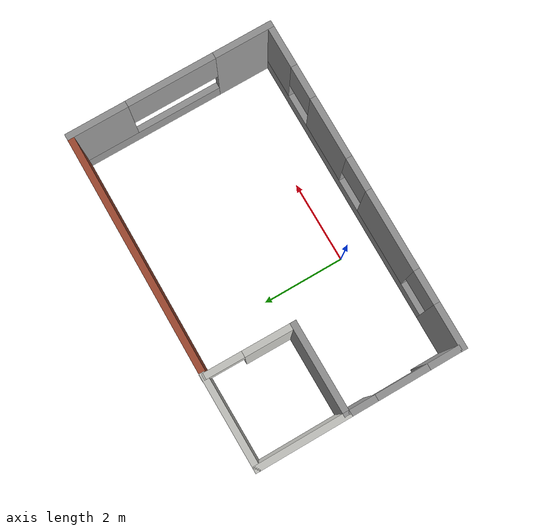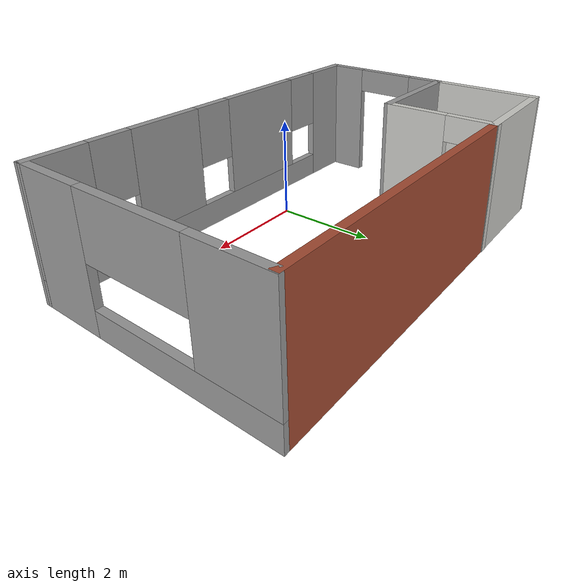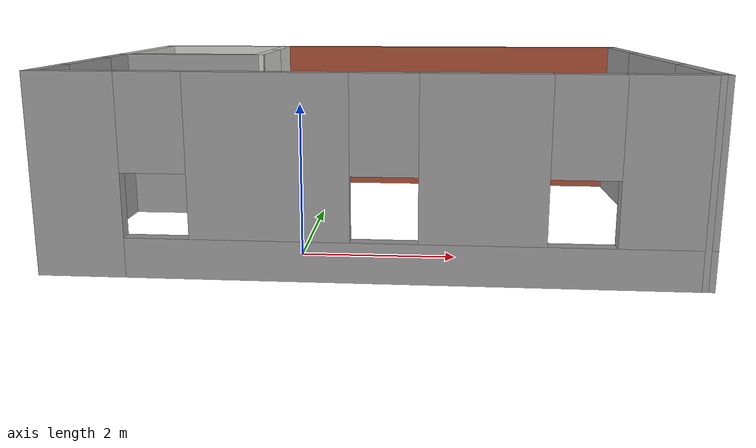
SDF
<?xml version='1.0'?>
<sdf version='1.6'>
  <model name='studio'>
    <pose frame=''>0.915139 1.5214 0 0 -0 0</pose>
    <link name='Wall_0'>
      <pose frame=''>-0 -2.41757 0 0 -0 -0.007301</pose>
      <visual name='Wall_0_Visual_0'>
        <pose frame=''>-3.47044 0 1.25 0 -0 0</pose>
        <geometry>
          <box>
            <size>1.09946 0.15 2.5</size>
          </box>
        </geometry>
        <material>
          <script>
            <uri>file://media/materials/scripts/gazebo.material</uri>
            <name>Gazebo/Grey</name>
          </script>
          <ambient>1 1 1 1</ambient>
        </material>
        <meta>
          <layer>0</layer>
        </meta>
      </visual>
      <collision name='Wall_0_Collision_0'>
        <geometry>
          <box>
            <size>1.09946 0.15 2.5</size>
          </box>
        </geometry>
        <pose frame=''>-3.47044 0 1.25 0 -0 0</pose>
      </collision>
      <visual name='Wall_0_Visual_1'>
        <pose frame=''>0.549728 0 0.25 0 -0 0</pose>
        <geometry>
          <box>
            <size>6.94087 0.15 0.5</size>
          </box>
        </geometry>
        <material>
          <script>
            <uri>file://media/materials/scripts/gazebo.material</uri>
            <name>Gazebo/Grey</name>
          </script>
          <ambient>1 1 1 1</ambient>
        </material>
        <meta>
          <layer>0</layer>
        </meta>
      </visual>
      <collision name='Wall_0_Collision_1'>
        <geometry>
          <box>
            <size>6.94087 0.15 0.5</size>
          </box>
        </geometry>
        <pose frame=''>0.549728 0 0.25 0 -0 0</pose>
      </collision>
      <visual name='Wall_0_Visual_2'>
        <pose frame=''>-1.15652 0 1.5 0 -0 0</pose>
        <geometry>
          <box>
            <size>1.92838 0.15 2</size>
          </box>
        </geometry>
        <material>
          <script>
            <uri>file://media/materials/scripts/gazebo.material</uri>
            <name>Gazebo/Grey</name>
          </script>
          <ambient>1 1 1 1</ambient>
        </material>
        <meta>
          <layer>0</layer>
        </meta>
      </visual>
      <collision name='Wall_0_Collision_2'>
        <geometry>
          <box>
            <size>1.92838 0.15 2</size>
          </box>
        </geometry>
        <pose frame=''>-1.15652 0 1.5 0 -0 0</pose>
      </collision>
      <visual name='Wall_0_Visual_3'>
        <pose frame=''>1.35343 0 1.5 0 -0 0</pose>
        <geometry>
          <box>
            <size>1.49152 0.15 2</size>
          </box>
        </geometry>
        <material>
          <script>
            <uri>file://media/materials/scripts/gazebo.material</uri>
            <name>Gazebo/Grey</name>
          </script>
          <ambient>1 1 1 1</ambient>
        </material>
        <meta>
          <layer>0</layer>
        </meta>
      </visual>
      <collision name='Wall_0_Collision_3'>
        <geometry>
          <box>
            <size>1.49152 0.15 2</size>
          </box>
        </geometry>
        <pose frame=''>1.35343 0 1.5 0 -0 0</pose>
      </collision>
      <visual name='Wall_0_Visual_4'>
        <pose frame=''>3.45968 0 1.5 0 -0 0</pose>
        <geometry>
          <box>
            <size>1.12098 0.15 2</size>
          </box>
        </geometry>
        <material>
          <script>
            <uri>file://media/materials/scripts/gazebo.material</uri>
            <name>Gazebo/Grey</name>
          </script>
          <ambient>1 1 1 1</ambient>
        </material>
        <meta>
          <layer>0</layer>
        </meta>
      </visual>
      <collision name='Wall_0_Collision_4'>
        <geometry>
          <box>
            <size>1.12098 0.15 2</size>
          </box>
        </geometry>
        <pose frame=''>3.45968 0 1.5 0 -0 0</pose>
      </collision>
      <visual name='Wall_0_Visual_5'>
        <pose frame=''>-2.52071 0 1.9 0 -0 0</pose>
        <geometry>
          <box>
            <size>0.8 0.15 1.2</size>
          </box>
        </geometry>
        <material>
          <script>
            <uri>file://media/materials/scripts/gazebo.material</uri>
            <name>Gazebo/Grey</name>
          </script>
          <ambient>1 1 1 1</ambient>
        </material>
        <meta>
          <layer>0</layer>
        </meta>
      </visual>
      <collision name='Wall_0_Collision_5'>
        <geometry>
          <box>
            <size>0.8 0.15 1.2</size>
          </box>
        </geometry>
        <pose frame=''>-2.52071 0 1.9 0 -0 0</pose>
      </collision>
      <visual name='Wall_0_Visual_6'>
        <pose frame=''>0.207668 0 1.9 0 -0 0</pose>
        <geometry>
          <box>
            <size>0.8 0.15 1.2</size>
          </box>
        </geometry>
        <material>
          <script>
            <uri>file://media/materials/scripts/gazebo.material</uri>
            <name>Gazebo/Grey</name>
          </script>
          <ambient>1 1 1 1</ambient>
        </material>
        <meta>
          <layer>0</layer>
        </meta>
      </visual>
      <collision name='Wall_0_Collision_6'>
        <geometry>
          <box>
            <size>0.8 0.15 1.2</size>
          </box>
        </geometry>
        <pose frame=''>0.207668 0 1.9 0 -0 0</pose>
      </collision>
      <visual name='Wall_0_Visual_7'>
        <pose frame=''>2.49919 0 1.9 0 -0 0</pose>
        <geometry>
          <box>
            <size>0.8 0.15 1.2</size>
          </box>
        </geometry>
        <material>
          <script>
            <uri>file://media/materials/scripts/gazebo.material</uri>
            <name>Gazebo/Grey</name>
          </script>
          <ambient>1 1 1 1</ambient>
        </material>
        <meta>
          <layer>0</layer>
        </meta>
      </visual>
      <collision name='Wall_0_Collision_7'>
        <geometry>
          <box>
            <size>0.8 0.15 1.2</size>
          </box>
        </geometry>
        <pose frame=''>2.49919 0 1.9 0 -0 0</pose>
      </collision>
    </link>
    <link name='Wall_1'>
      <pose frame=''>3.94506 -0.021379 0 0 -0 1.5708</pose>
      <visual name='Wall_1_Visual_0'>
        <pose frame=''>-1.78332 0 1.25 0 -0 0</pose>
        <geometry>
          <box>
            <size>1.43335 0.15 2.5</size>
          </box>
        </geometry>
        <material>
          <script>
            <uri>file://media/materials/scripts/gazebo.material</uri>
            <name>Gazebo/Grey</name>
          </script>
          <ambient>1 1 1 1</ambient>
        </material>
        <meta>
          <layer>0</layer>
        </meta>
      </visual>
      <collision name='Wall_1_Collision_0'>
        <geometry>
          <box>
            <size>1.43335 0.15 2.5</size>
          </box>
        </geometry>
        <pose frame=''>-1.78332 0 1.25 0 -0 0</pose>
      </collision>
      <visual name='Wall_1_Visual_1'>
        <pose frame=''>0.716677 0 0.25 0 -0 0</pose>
        <geometry>
          <box>
            <size>3.56665 0.15 0.5</size>
          </box>
        </geometry>
        <material>
          <script>
            <uri>file://media/materials/scripts/gazebo.material</uri>
            <name>Gazebo/Grey</name>
          </script>
          <ambient>1 1 1 1</ambient>
        </material>
        <meta>
          <layer>0</layer>
        </meta>
      </visual>
      <collision name='Wall_1_Collision_1'>
        <geometry>
          <box>
            <size>3.56665 0.15 0.5</size>
          </box>
        </geometry>
        <pose frame=''>0.716677 0 0.25 0 -0 0</pose>
      </collision>
      <visual name='Wall_1_Visual_2'>
        <pose frame=''>1.7759 0 1.5 0 -0 0</pose>
        <geometry>
          <box>
            <size>1.4482 0.15 2</size>
          </box>
        </geometry>
        <material>
          <script>
            <uri>file://media/materials/scripts/gazebo.material</uri>
            <name>Gazebo/Grey</name>
          </script>
          <ambient>1 1 1 1</ambient>
        </material>
        <meta>
          <layer>0</layer>
        </meta>
      </visual>
      <collision name='Wall_1_Collision_2'>
        <geometry>
          <box>
            <size>1.4482 0.15 2</size>
          </box>
        </geometry>
        <pose frame=''>1.7759 0 1.5 0 -0 0</pose>
      </collision>
      <visual name='Wall_1_Visual_3'>
        <pose frame=''>-0.007425 0 1.9 0 -0 0</pose>
        <geometry>
          <box>
            <size>2.11844 0.15 1.2</size>
          </box>
        </geometry>
        <material>
          <script>
            <uri>file://media/materials/scripts/gazebo.material</uri>
            <name>Gazebo/Grey</name>
          </script>
          <ambient>1 1 1 1</ambient>
        </material>
        <meta>
          <layer>0</layer>
        </meta>
      </visual>
      <collision name='Wall_1_Collision_3'>
        <geometry>
          <box>
            <size>2.11844 0.15 1.2</size>
          </box>
        </geometry>
        <pose frame=''>-0.007425 0 1.9 0 -0 0</pose>
      </collision>
    </link>
    <link name='Wall_10'>
      <collision name='Wall_10_Collision'>
        <geometry>
          <box>
            <size>2.25 0.15 2.5</size>
          </box>
        </geometry>
        <pose frame=''>0 0 1.25 0 -0 0</pose>
      </collision>
      <visual name='Wall_10_Visual'>
        <pose frame=''>0 0 1.25 0 -0 0</pose>
        <geometry>
          <box>
            <size>2.25 0.15 2.5</size>
          </box>
        </geometry>
        <material>
          <script>
            <uri>file://media/materials/scripts/gazebo.material</uri>
            <name>Gazebo/Grey</name>
          </script>
          <ambient>1 1 1 1</ambient>
        </material>
        <meta>
          <layer>0</layer>
        </meta>
      </visual>
      <pose frame=''>-2.89101 0.331178 0 0 -0 3.14159</pose>
    </link>
    <link name='Wall_11'>
      <pose frame=''>-3.94101 -0.968822 0 0 -0 -1.5708</pose>
      <visual name='Wall_11_Visual_0'>
        <pose frame=''>-0.995967 0 1.25 0 -0 0</pose>
        <geometry>
          <box>
            <size>0.758065 0.15 2.5</size>
          </box>
        </geometry>
        <material>
          <script>
            <uri>file://media/materials/scripts/gazebo.material</uri>
            <name>Gazebo/Grey</name>
          </script>
          <ambient>1 1 1 1</ambient>
        </material>
        <meta>
          <layer>0</layer>
        </meta>
      </visual>
      <collision name='Wall_11_Collision_0'>
        <geometry>
          <box>
            <size>0.758065 0.15 2.5</size>
          </box>
        </geometry>
        <pose frame=''>-0.995967 0 1.25 0 -0 0</pose>
      </collision>
      <visual name='Wall_11_Visual_1'>
        <pose frame=''>0.995188 0 1.25 0 -0 0</pose>
        <geometry>
          <box>
            <size>0.759623 0.15 2.5</size>
          </box>
        </geometry>
        <material>
          <script>
            <uri>file://media/materials/scripts/gazebo.material</uri>
            <name>Gazebo/Grey</name>
          </script>
          <ambient>1 1 1 1</ambient>
        </material>
        <meta>
          <layer>0</layer>
        </meta>
      </visual>
      <collision name='Wall_11_Collision_1'>
        <geometry>
          <box>
            <size>0.759623 0.15 2.5</size>
          </box>
        </geometry>
        <pose frame=''>0.995188 0 1.25 0 -0 0</pose>
      </collision>
      <visual name='Wall_11_Visual_2'>
        <pose frame=''>-0.000779 0 2.25 0 -0 0</pose>
        <geometry>
          <box>
            <size>1.23231 0.15 0.5</size>
          </box>
        </geometry>
        <material>
          <script>
            <uri>file://media/materials/scripts/gazebo.material</uri>
            <name>Gazebo/Grey</name>
          </script>
          <ambient>1 1 1 1</ambient>
        </material>
        <meta>
          <layer>0</layer>
        </meta>
      </visual>
      <collision name='Wall_11_Collision_2'>
        <geometry>
          <box>
            <size>1.23231 0.15 0.5</size>
          </box>
        </geometry>
        <pose frame=''>-0.000779 0 2.25 0 -0 0</pose>
      </collision>
    </link>
    <link name='Wall_13'>
      <collision name='Wall_13_Collision'>
        <geometry>
          <box>
            <size>2.25 0.15 2.5</size>
          </box>
        </geometry>
        <pose frame=''>0 0 1.25 0 -0 0</pose>
      </collision>
      <visual name='Wall_13_Visual'>
        <pose frame=''>0 0 1.25 0 -0 0</pose>
        <geometry>
          <box>
            <size>2.25 0.15 2.5</size>
          </box>
        </geometry>
        <material>
          <script>
            <uri>file://media/materials/scripts/gazebo.material</uri>
            <name>Gazebo/CeilingTiled</name>
          </script>
          <ambient>1 1 1 1</ambient>
        </material>
        <meta>
          <layer>0</layer>
        </meta>
      </visual>
      <pose frame=''>-3.94101 1.38118 0 0 -0 1.5708</pose>
    </link>
    <link name='Wall_14'>
      <collision name='Wall_14_Collision'>
        <geometry>
          <box>
            <size>2.28588 0.15 2.5</size>
          </box>
        </geometry>
        <pose frame=''>0 0 1.25 0 -0 0</pose>
      </collision>
      <visual name='Wall_14_Visual'>
        <pose frame=''>0 0 1.25 0 -0 0</pose>
        <geometry>
          <box>
            <size>2.28588 0.15 2.5</size>
          </box>
        </geometry>
        <material>
          <script>
            <uri>file://media/materials/scripts/gazebo.material</uri>
            <name>Gazebo/CeilingTiled</name>
          </script>
          <ambient>1 1 1 1</ambient>
        </material>
        <meta>
          <layer>0</layer>
        </meta>
      </visual>
      <pose frame=''>-2.87307 2.43489 0 0 -0 0.003475</pose>
    </link>
    <link name='Wall_6'>
      <pose frame=''>-1.8334 1.38878 0 0 -0 1.56361</pose>
      <visual name='Wall_6_Visual_0'>
        <pose frame=''>-0.493027 0 1.25 0 -0 0</pose>
        <geometry>
          <box>
            <size>1.27921 0.15 2.5</size>
          </box>
        </geometry>
        <material>
          <script>
            <uri>file://media/materials/scripts/gazebo.material</uri>
            <name>Gazebo/CeilingTiled</name>
          </script>
          <ambient>1 1 1 1</ambient>
        </material>
        <meta>
          <layer>0</layer>
        </meta>
      </visual>
      <collision name='Wall_6_Collision_0'>
        <geometry>
          <box>
            <size>1.27921 0.15 2.5</size>
          </box>
        </geometry>
        <pose frame=''>-0.493027 0 1.25 0 -0 0</pose>
      </collision>
      <visual name='Wall_6_Visual_1'>
        <pose frame=''>1.0896 0 1.25 0 -0 0</pose>
        <geometry>
          <box>
            <size>0.086054 0.15 2.5</size>
          </box>
        </geometry>
        <material>
          <script>
            <uri>file://media/materials/scripts/gazebo.material</uri>
            <name>Gazebo/CeilingTiled</name>
          </script>
          <ambient>1 1 1 1</ambient>
        </material>
        <meta>
          <layer>0</layer>
        </meta>
      </visual>
      <collision name='Wall_6_Collision_1'>
        <geometry>
          <box>
            <size>0.086054 0.15 2.5</size>
          </box>
        </geometry>
        <pose frame=''>1.0896 0 1.25 0 -0 0</pose>
      </collision>
      <visual name='Wall_6_Visual_2'>
        <pose frame=''>0.596578 0 2.25 0 -0 0</pose>
        <geometry>
          <box>
            <size>0.9 0.15 0.5</size>
          </box>
        </geometry>
        <material>
          <script>
            <uri>file://media/materials/scripts/gazebo.material</uri>
            <name>Gazebo/CeilingTiled</name>
          </script>
          <ambient>1 1 1 1</ambient>
        </material>
        <meta>
          <layer>0</layer>
        </meta>
      </visual>
      <collision name='Wall_6_Collision_2'>
        <geometry>
          <box>
            <size>0.9 0.15 0.5</size>
          </box>
        </geometry>
        <pose frame=''>0.596578 0 2.25 0 -0 0</pose>
      </collision>
    </link>
    <link name='Wall_8'>
      <collision name='Wall_8_Collision'>
        <geometry>
          <box>
            <size>5.88281 0.15 2.5</size>
          </box>
        </geometry>
        <pose frame=''>0 0 1.25 0 -0 0</pose>
      </collision>
      <visual name='Wall_8_Visual'>
        <pose frame=''>0 0 1.25 0 -0 0</pose>
        <geometry>
          <box>
            <size>5.88281 0.15 2.5</size>
          </box>
        </geometry>
        <material>
          <script>
            <uri>file://media/materials/scripts/gazebo.material</uri>
            <name>Gazebo/Bricks</name>
          </script>
          <ambient>1 1 1 1</ambient>
        </material>
        <meta>
          <layer>0</layer>
        </meta>
      </visual>
      <pose frame=''>1.06122 2.42111 0 0 -0 3.13549</pose>
    </link>
    <static>1</static>
  </model>
</sdf>
